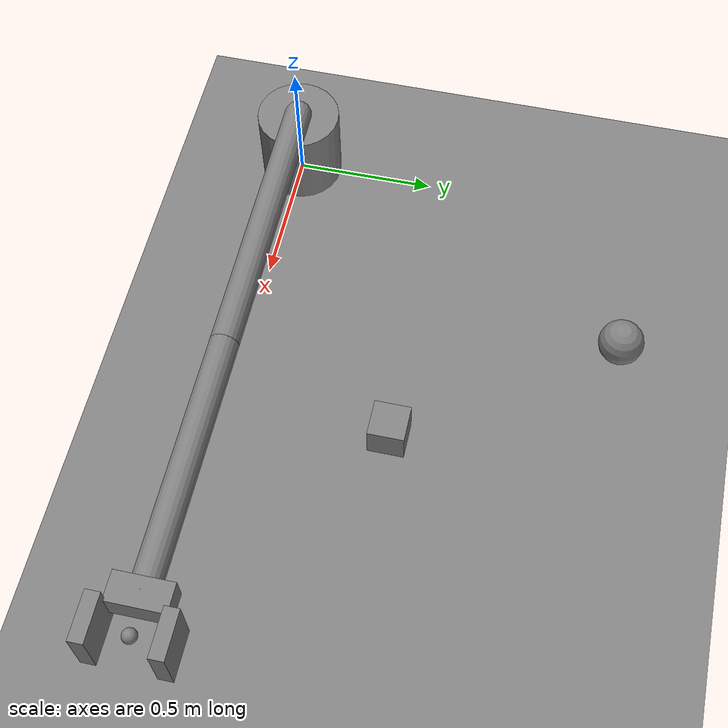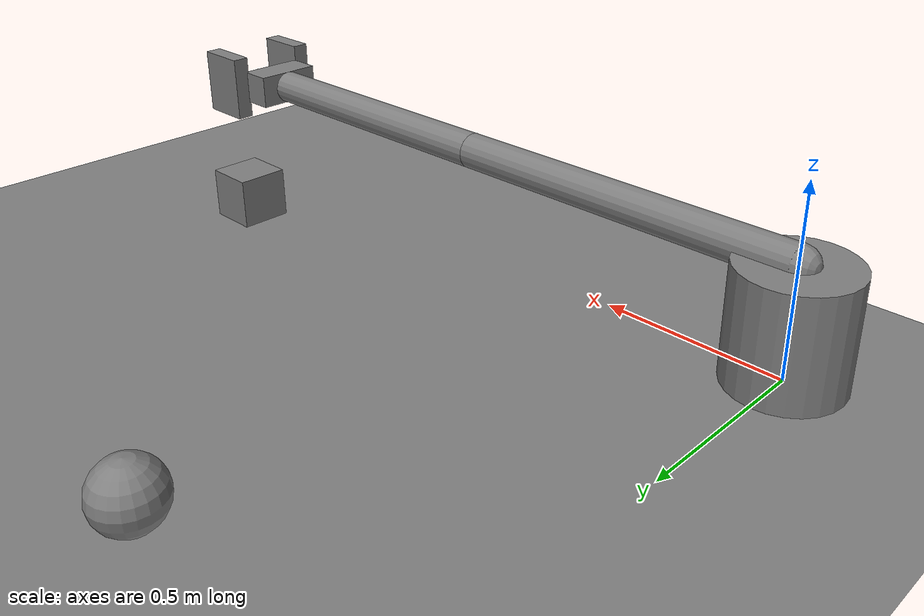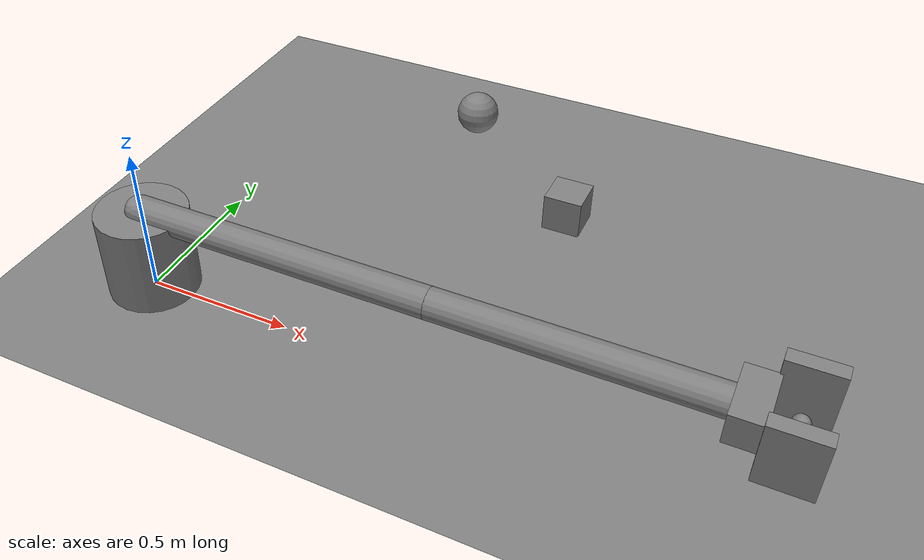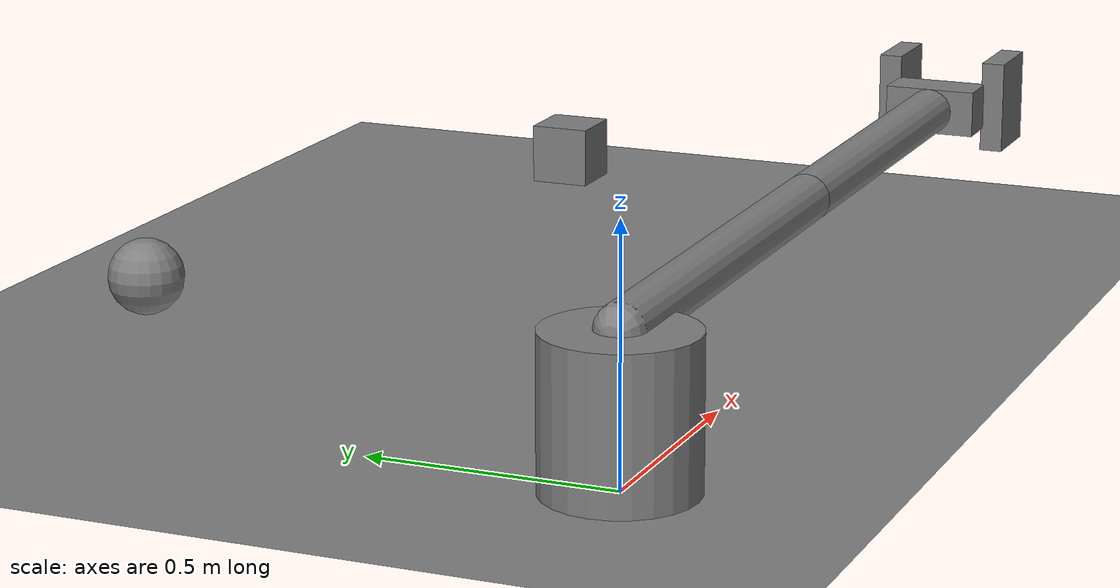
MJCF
<mujoco model="two_link_gripper">

    <option
        timestep="0.002"
        gravity="0 0 -9.81"
    />

    <default>

        <geom
            friction="1.5 0.1 0.01"
        />

    </default>

    <worldbody>

        <!-- ==============================
             Ground
        =============================== -->

        <geom
            name="ground"
            type="plane"
            size="5 5 0.1"
        />

        <!-- ==============================
             Robot base
        =============================== -->

        <body
            name="base"
            pos="0 0 0.15"
        >

            <geom
                name="base_geom"
                type="cylinder"
                size="0.15 0.15"
            />

            <!-- ==========================
                 Link 1
            =========================== -->

            <body
                name="link1"
                pos="0 0 0.15"
            >

                <joint
                    name="joint1"
                    type="hinge"
                    axis="0 0 1"
                    damping="0.2"
                />

                <geom
                    name="link1_geom"
                    type="capsule"
                    fromto="0 0 0 1 0 0"
                    size="0.05"
                />

                <!-- ======================
                     Link 2
                ======================= -->

                <body
                    name="link2"
                    pos="1 0 0"
                >

                    <joint
                        name="joint2"
                        type="hinge"
                        axis="0 0 1"
                        damping="0.2"
                    />

                    <geom
                        name="link2_geom"
                        type="capsule"
                        fromto="0 0 0 0.9 0 0"
                        size="0.05"
                    />

                    <!-- ==================
                         Gripper base
                    =================== -->

                    <body
                        name="gripper_base"
                        pos="0.9 0 0"
                    >

                        <geom
                            name="gripper_base_geom"
                            type="box"
                            size="0.05 0.10 0.05"
                        />

                        <!-- Left finger -->

                        <body
                            name="left_finger"
                            pos="0.12 0.12 0"
                        >

                            <joint
                                name="left_finger_joint"
                                type="slide"
                                axis="0 -1 0"
                                range="0 0.08"
                                damping="1.0"
                            />

                            <geom
                                name="left_finger_geom"
                                type="box"
                                size="0.08 0.025 0.10"
                                friction="2.0 0.1 0.01"
                            />

                        </body>

                        <!-- Right finger -->

                        <body
                            name="right_finger"
                            pos="0.12 -0.12 0"
                        >

                            <joint
                                name="right_finger_joint"
                                type="slide"
                                axis="0 1 0"
                                range="0 0.08"
                                damping="1.0"
                            />

                            <geom
                                name="right_finger_geom"
                                type="box"
                                size="0.08 0.025 0.10"
                                friction="2.0 0.1 0.01"
                            />

                        </body>

                        <!-- 末端中心点 -->

                        <site
                            name="ee_site"
                            pos="0.12 0 0"
                            type="sphere"
                            size="0.025"
                        />

                    </body>

                </body>

            </body>

        </body>

        <!-- ==============================
             Dynamic cube
        =============================== -->

        <body
            name="cube"
            pos="1.2 0.6 0.30"
        >

            <!-- 允许方块在水平面 x-y 中自由移动 -->
            <joint
                name="cube_x"
                type="slide"
                axis="1 0 0"
                damping="0.1"
            />

            <joint
                name="cube_y"
                type="slide"
                axis="0 1 0"
                damping="0.1"
            />

            <!-- 允许方块绕 z 轴旋转 -->
            <joint
                name="cube_yaw"
                type="hinge"
                axis="0 0 1"
                damping="0.05"
            />

            <geom
                name="cube_geom"
                type="box"
                size="0.06 0.06 0.06"
                mass="0.15"
                friction="2.0 0.1 0.01"
            />

        </body>

        <!-- Place target -->

        <site
            name="place_target"
            pos="0.6 1.3 0.10"
            type="sphere"
            size="0.08"
        />

    </worldbody>

    <!-- ==============================
         Collision exclusions
    =============================== -->

    <contact>

        <exclude
            body1="base"
            body2="link1"
        />

        <exclude
            body1="link1"
            body2="link2"
        />

        <exclude
            body1="link2"
            body2="gripper_base"
        />

    </contact>

    <!-- ==============================
         Actuators
    =============================== -->

    <actuator>

        <motor
            name="motor1"
            joint="joint1"
            gear="1"
            ctrllimited="true"
            ctrlrange="-20 20"
        />

        <motor
            name="motor2"
            joint="joint2"
            gear="1"
            ctrllimited="true"
            ctrlrange="-20 20"
        />

        <!-- 用 position actuator 控制夹爪更方便 -->

        <position
            name="left_gripper_act"
            joint="left_finger_joint"
            kp="300"
            ctrllimited="true"
            ctrlrange="0 0.08"
        />

        <position
            name="right_gripper_act"
            joint="right_finger_joint"
            kp="300"
            ctrllimited="true"
            ctrlrange="0 0.08"
        />

    </actuator>

</mujoco>
